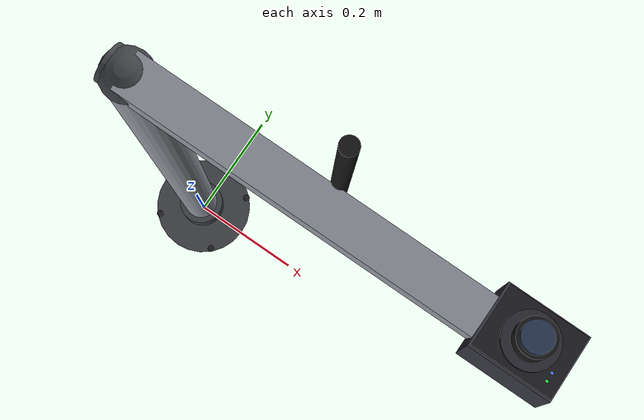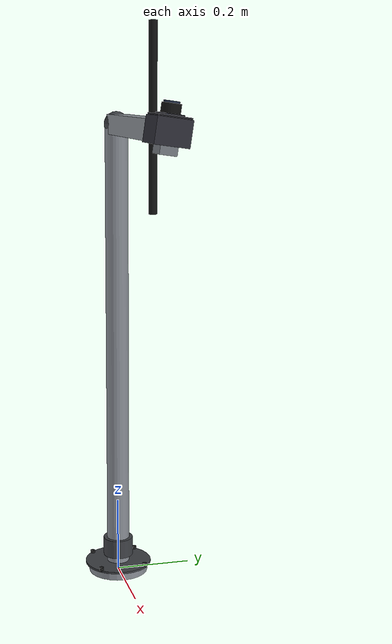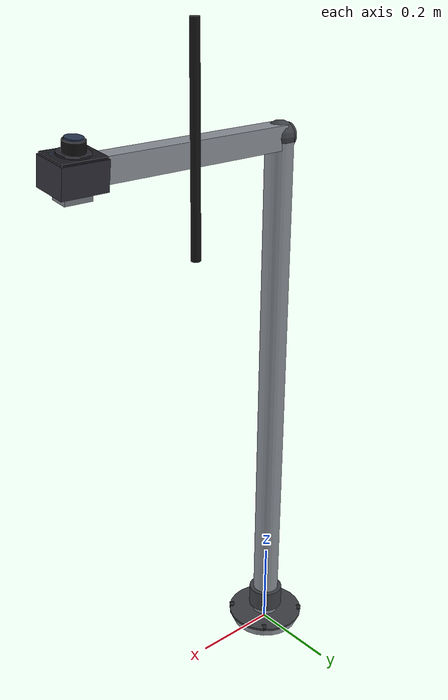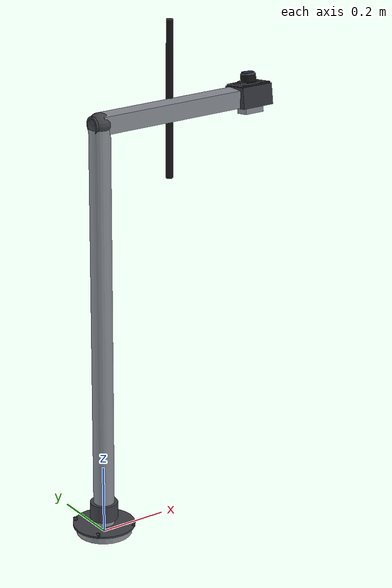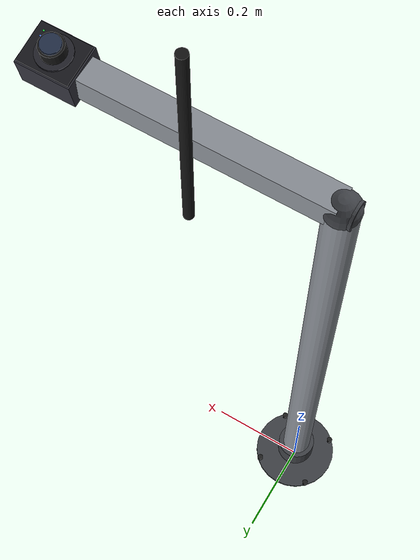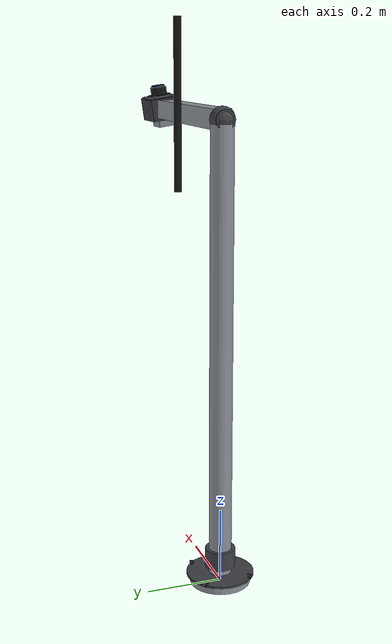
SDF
<?xml version="1.0"?>
<!--
  Scanner arm model (SDF) for Gazebo Classic.
  - Vertical pole with horizontal extension.
  - Downward-facing camera sensor.
  - Static model.
-->
<sdf version="1.6">
  <model name="scanner_arm">
    <static>true</static>

    <link name="base_plate">
      <pose>0 0 0.01 0 0 0</pose>
      <inertial>
        <mass>5.0</mass>
        <inertia>
          <ixx>0.02</ixx>
          <ixy>0</ixy>
          <ixz>0</ixz>
          <iyy>0.02</iyy>
          <iyz>0</iyz>
          <izz>0.01</izz>
        </inertia>
      </inertial>
      <collision name="base_collision">
        <geometry>
          <cylinder>
            <radius>0.08</radius>
            <length>0.02</length>
          </cylinder>
        </geometry>
      </collision>
      <visual name="base_visual">
        <geometry>
          <cylinder>
            <radius>0.08</radius>
            <length>0.02</length>
          </cylinder>
        </geometry>
        <material>
          <ambient>0.55 0.57 0.60 1</ambient>
          <diffuse>0.55 0.57 0.60 1</diffuse>
          <specular>0.9 0.9 0.9 1</specular>
          <pbr>
            <metal>
              <albedo>0.55 0.57 0.60 1</albedo>
              <metalness>1.0</metalness>
              <roughness>0.2</roughness>
            </metal>
          </pbr>
        </material>
      </visual>

      <!-- Decorative flange ring + bolts (visual only) -->
      <visual name="base_ring_visual">
        <pose>0 0 0.015 0 0 0</pose>
        <geometry>
          <cylinder>
            <radius>0.09</radius>
            <length>0.005</length>
          </cylinder>
        </geometry>
        <material>
          <ambient>0.25 0.26 0.28 1</ambient>
          <diffuse>0.25 0.26 0.28 1</diffuse>
          <specular>0.6 0.6 0.6 1</specular>
        </material>
      </visual>
      <visual name="bolt_1">
        <pose>0.06 0.06 0.02 0 0 0</pose>
        <geometry>
          <cylinder>
            <radius>0.006</radius>
            <length>0.01</length>
          </cylinder>
        </geometry>
        <material>
          <ambient>0.12 0.12 0.12 1</ambient>
          <diffuse>0.12 0.12 0.12 1</diffuse>
        </material>
      </visual>
      <visual name="bolt_2">
        <pose>-0.06 0.06 0.02 0 0 0</pose>
        <geometry>
          <cylinder>
            <radius>0.006</radius>
            <length>0.01</length>
          </cylinder>
        </geometry>
        <material>
          <ambient>0.12 0.12 0.12 1</ambient>
          <diffuse>0.12 0.12 0.12 1</diffuse>
        </material>
      </visual>
      <visual name="bolt_3">
        <pose>-0.06 -0.06 0.02 0 0 0</pose>
        <geometry>
          <cylinder>
            <radius>0.006</radius>
            <length>0.01</length>
          </cylinder>
        </geometry>
        <material>
          <ambient>0.12 0.12 0.12 1</ambient>
          <diffuse>0.12 0.12 0.12 1</diffuse>
        </material>
      </visual>
      <visual name="bolt_4">
        <pose>0.06 -0.06 0.02 0 0 0</pose>
        <geometry>
          <cylinder>
            <radius>0.006</radius>
            <length>0.01</length>
          </cylinder>
        </geometry>
        <material>
          <ambient>0.12 0.12 0.12 1</ambient>
          <diffuse>0.12 0.12 0.12 1</diffuse>
        </material>
      </visual>
    </link>

    <link name="pole_link">
      <pose>0 0 0.62 0 0 0</pose>
      <inertial>
        <mass>10.0</mass>
        <inertia>
          <ixx>0.10</ixx>
          <ixy>0</ixy>
          <ixz>0</ixz>
          <iyy>0.10</iyy>
          <iyz>0</iyz>
          <izz>0.02</izz>
        </inertia>
      </inertial>
      <collision name="pole_collision">
        <geometry>
          <cylinder>
            <radius>0.03</radius>
            <length>1.20</length>
          </cylinder>
        </geometry>
      </collision>
      <visual name="pole_visual">
        <geometry>
          <cylinder>
            <radius>0.03</radius>
            <length>1.20</length>
          </cylinder>
        </geometry>
        <material>
          <ambient>0.55 0.57 0.60 1</ambient>
          <diffuse>0.55 0.57 0.60 1</diffuse>
          <specular>0.9 0.9 0.9 1</specular>
          <pbr>
            <metal>
              <albedo>0.55 0.57 0.60 1</albedo>
              <metalness>1.0</metalness>
              <roughness>0.2</roughness>
            </metal>
          </pbr>
        </material>
      </visual>

      <!-- Simple collar and top cap (visual only) -->
      <visual name="pole_collar">
        <pose>0 0 -0.55 0 0 0</pose>
        <geometry>
          <cylinder>
            <radius>0.04</radius>
            <length>0.05</length>
          </cylinder>
        </geometry>
        <material>
          <ambient>0.25 0.26 0.28 1</ambient>
          <diffuse>0.25 0.26 0.28 1</diffuse>
          <specular>0.6 0.6 0.6 1</specular>
        </material>
      </visual>
      <visual name="pole_cap">
        <pose>0 0 0.60 0 0 0</pose>
        <geometry>
          <sphere>
            <radius>0.032</radius>
          </sphere>
        </geometry>
        <material>
          <ambient>0.25 0.26 0.28 1</ambient>
          <diffuse>0.25 0.26 0.28 1</diffuse>
        </material>
      </visual>
    </link>

    <link name="arm_link">
      <pose>0.25 0 1.22 0 0 0</pose>
      <inertial>
        <mass>3.0</mass>
        <inertia>
          <ixx>0.02</ixx>
          <ixy>0</ixy>
          <ixz>0</ixz>
          <iyy>0.05</iyy>
          <iyz>0</iyz>
          <izz>0.05</izz>
        </inertia>
      </inertial>
      <collision name="arm_collision">
        <geometry>
          <box>
            <size>0.50 0.05 0.05</size>
          </box>
        </geometry>
      </collision>
      <visual name="arm_visual">
        <geometry>
          <box>
            <size>0.50 0.05 0.05</size>
          </box>
        </geometry>
        <material>
          <ambient>0.55 0.57 0.60 1</ambient>
          <diffuse>0.55 0.57 0.60 1</diffuse>
          <specular>0.9 0.9 0.9 1</specular>
          <pbr>
            <metal>
              <albedo>0.55 0.57 0.60 1</albedo>
              <metalness>1.0</metalness>
              <roughness>0.2</roughness>
            </metal>
          </pbr>
        </material>
      </visual>

      <!-- Rounded end-caps + cable conduit (visual only) -->
      <visual name="arm_endcap_left">
        <pose>-0.25 0 0 0 1.5708 0</pose>
        <geometry>
          <cylinder>
            <radius>0.025</radius>
            <length>0.05</length>
          </cylinder>
        </geometry>
        <material>
          <ambient>0.25 0.26 0.28 1</ambient>
          <diffuse>0.25 0.26 0.28 1</diffuse>
        </material>
      </visual>
      <visual name="arm_endcap_right">
        <pose>0.25 0 0 0 1.5708 0</pose>
        <geometry>
          <cylinder>
            <radius>0.025</radius>
            <length>0.05</length>
          </cylinder>
        </geometry>
        <material>
          <ambient>0.25 0.26 0.28 1</ambient>
          <diffuse>0.25 0.26 0.28 1</diffuse>
        </material>
      </visual>
      <visual name="arm_conduit">
        <pose>0 0.032 0.02 0 0 0</pose>
        <geometry>
          <cylinder>
            <radius>0.01</radius>
            <length>0.45</length>
          </cylinder>
        </geometry>
        <material>
          <ambient>0.08 0.08 0.08 1</ambient>
          <diffuse>0.08 0.08 0.08 1</diffuse>
        </material>
      </visual>
    </link>

    <link name="camera_link">
      <pose>0.50 0 1.22 3 0 0</pose>
      <inertial>
        <mass>1.0</mass>
        <inertia>
          <ixx>0.005</ixx>
          <ixy>0</ixy>
          <ixz>0</ixz>
          <iyy>0.005</iyy>
          <iyz>0</iyz>
          <izz>0.005</izz>
        </inertia>
      </inertial>
      <collision name="camera_collision">
        <geometry>
          <box>
            <size>0.10 0.08 0.06</size>
          </box>
        </geometry>
      </collision>

      <!-- Industrial camera housing -->
      <visual name="camera_housing_main">
        <geometry>
          <box><size>0.10 0.08 0.06</size></box>
        </geometry>
        <material>
          <ambient>0.15 0.15 0.18 1</ambient>
          <diffuse>0.2 0.2 0.24 1</diffuse>
          <specular>0.4 0.4 0.4 1</specular>
        </material>
      </visual>

      <!-- Camera front face plate -->
      <visual name="camera_faceplate">
        <pose>0 0 -0.032 0 0 0</pose>
        <geometry>
          <box><size>0.095 0.075 0.005</size></box>
        </geometry>
        <material>
          <ambient>0.08 0.08 0.1 1</ambient>
          <diffuse>0.1 0.1 0.12 1</diffuse>
          <specular>0.6 0.6 0.6 1</specular>
        </material>
      </visual>

      <!-- Main camera lens housing -->
      <visual name="camera_lens_housing">
        <pose>0 0 -0.045 0 0 0</pose>
        <geometry>
          <cylinder><radius>0.022</radius><length>0.03</length></cylinder>
        </geometry>
        <material>
          <ambient>0.05 0.05 0.05 1</ambient>
          <diffuse>0.08 0.08 0.08 1</diffuse>
          <specular>0.7 0.7 0.7 1</specular>
        </material>
      </visual>

      <!-- Glass lens element -->
      <visual name="camera_lens_glass">
        <pose>0 0 -0.062 0 0 0</pose>
        <geometry>
          <cylinder><radius>0.018</radius><length>0.005</length></cylinder>
        </geometry>
        <material>
          <ambient>0.1 0.15 0.2 0.8</ambient>
          <diffuse>0.15 0.2 0.3 0.9</diffuse>
          <specular>0.95 0.95 0.95 1</specular>
        </material>
      </visual>

      <!-- IR illuminator ring -->
      <visual name="ir_ring">
        <pose>0 0 -0.036 0 0 0</pose>
        <geometry>
          <cylinder><radius>0.032</radius><length>0.004</length></cylinder>
        </geometry>
        <material>
          <ambient>0.12 0.12 0.14 1</ambient>
          <diffuse>0.15 0.15 0.18 1</diffuse>
        </material>
      </visual>

      <!-- Status LED - Power (green) -->
      <visual name="led_power">
        <pose>0.035 0.025 -0.031 0 0 0</pose>
        <geometry>
          <sphere><radius>0.004</radius></sphere>
        </geometry>
        <material>
          <ambient>0.1 0.8 0.2 1</ambient>
          <diffuse>0.15 0.9 0.3 1</diffuse>
          <emissive>0.05 0.4 0.1 1</emissive>
        </material>
      </visual>

      <!-- Status LED - Active (blue) -->
      <visual name="led_active">
        <pose>0.035 0.015 -0.031 0 0 0</pose>
        <geometry>
          <sphere><radius>0.004</radius></sphere>
        </geometry>
        <material>
          <ambient>0.2 0.4 0.9 1</ambient>
          <diffuse>0.3 0.5 0.95 1</diffuse>
          <emissive>0.1 0.2 0.5 1</emissive>
        </material>
      </visual>

      <!-- Mounting bracket -->
      <visual name="camera_bracket">
        <pose>0 0 0.04 0 0 0</pose>
        <geometry>
          <box><size>0.06 0.04 0.02</size></box>
        </geometry>
        <material>
          <ambient>0.4 0.42 0.45 1</ambient>
          <diffuse>0.5 0.52 0.55 1</diffuse>
          <specular>0.5 0.5 0.5 1</specular>
        </material>
      </visual>

      <!-- Brand label area -->
      <visual name="camera_label">
        <pose>0.035 0 0.015 0 0 0</pose>
        <geometry>
          <box><size>0.025 0.05 0.025</size></box>
        </geometry>
        <material>
          <ambient>0.9 0.9 0.92 1</ambient>
          <diffuse>0.95 0.95 0.97 1</diffuse>
        </material>
      </visual>

      <!-- Ventilation slots -->
      <visual name="vent_slot_1">
        <pose>-0.04 0.02 0 0 0 0</pose>
        <geometry><box><size>0.015 0.003 0.04</size></box></geometry>
        <material><ambient>0.05 0.05 0.05 1</ambient><diffuse>0.08 0.08 0.08 1</diffuse></material>
      </visual>
      <visual name="vent_slot_2">
        <pose>-0.04 0 0 0 0 0</pose>
        <geometry><box><size>0.015 0.003 0.04</size></box></geometry>
        <material><ambient>0.05 0.05 0.05 1</ambient><diffuse>0.08 0.08 0.08 1</diffuse></material>
      </visual>
      <visual name="vent_slot_3">
        <pose>-0.04 -0.02 0 0 0 0</pose>
        <geometry><box><size>0.015 0.003 0.04</size></box></geometry>
        <material><ambient>0.05 0.05 0.05 1</ambient><diffuse>0.08 0.08 0.08 1</diffuse></material>
      </visual>

      <sensor name="scanner_camera" type="camera">
        <always_on>true</always_on>
        <visualize>true</visualize>
        <update_rate>30</update_rate>
        <camera>
          <horizontal_fov>1.047</horizontal_fov>
          <image>
            <width>1920</width>
            <height>1080</height>
            <format>R8G8B8</format>
          </image>
          <clip>
            <near>0.05</near>
            <far>10.0</far>
          </clip>
          <noise>
            <type>gaussian</type>
            <mean>0.0</mean>
            <stddev>0.01</stddev>
          </noise>
        </camera>
        <!-- Sensor pose (xyz rpy). Pitch -90deg to look down; roll set to 3 rad as requested. -->
        <pose>0 0 -0.025 3 -1.5708 0</pose>
        <plugin name="gazebo_ros_camera" filename="libgazebo_ros_camera.so">
          <ros>
            <namespace>/camera</namespace>
          </ros>
          <cameraName>scanner_camera</cameraName>
          <imageTopicName>raw</imageTopicName>
          <cameraInfoTopicName>camera_info</cameraInfoTopicName>
          <frameName>camera_link</frameName>
          <updateRate>30.0</updateRate>
        </plugin>
      </sensor>
    </link>

    <joint name="base_to_pole" type="fixed">
      <parent>base_plate</parent>
      <child>pole_link</child>
    </joint>

    <joint name="pole_to_arm" type="fixed">
      <parent>pole_link</parent>
      <child>arm_link</child>
    </joint>

    <joint name="arm_to_camera" type="fixed">
      <parent>arm_link</parent>
      <child>camera_link</child>
    </joint>

  </model>
</sdf>
